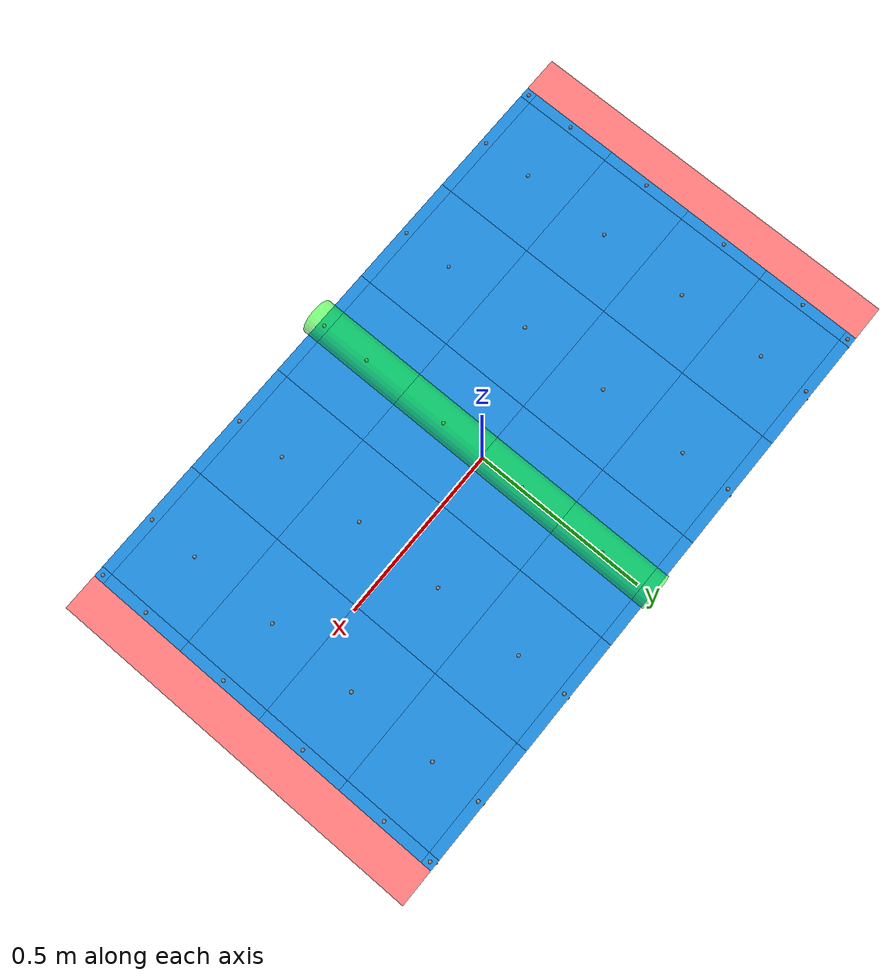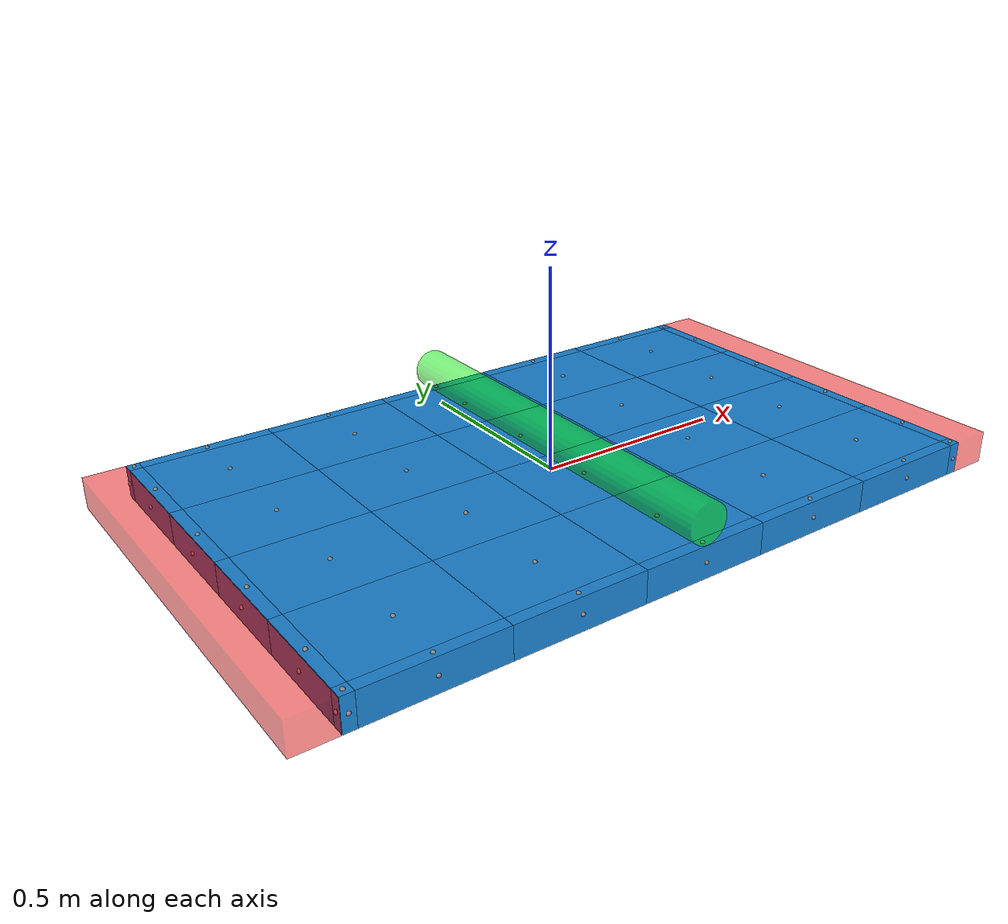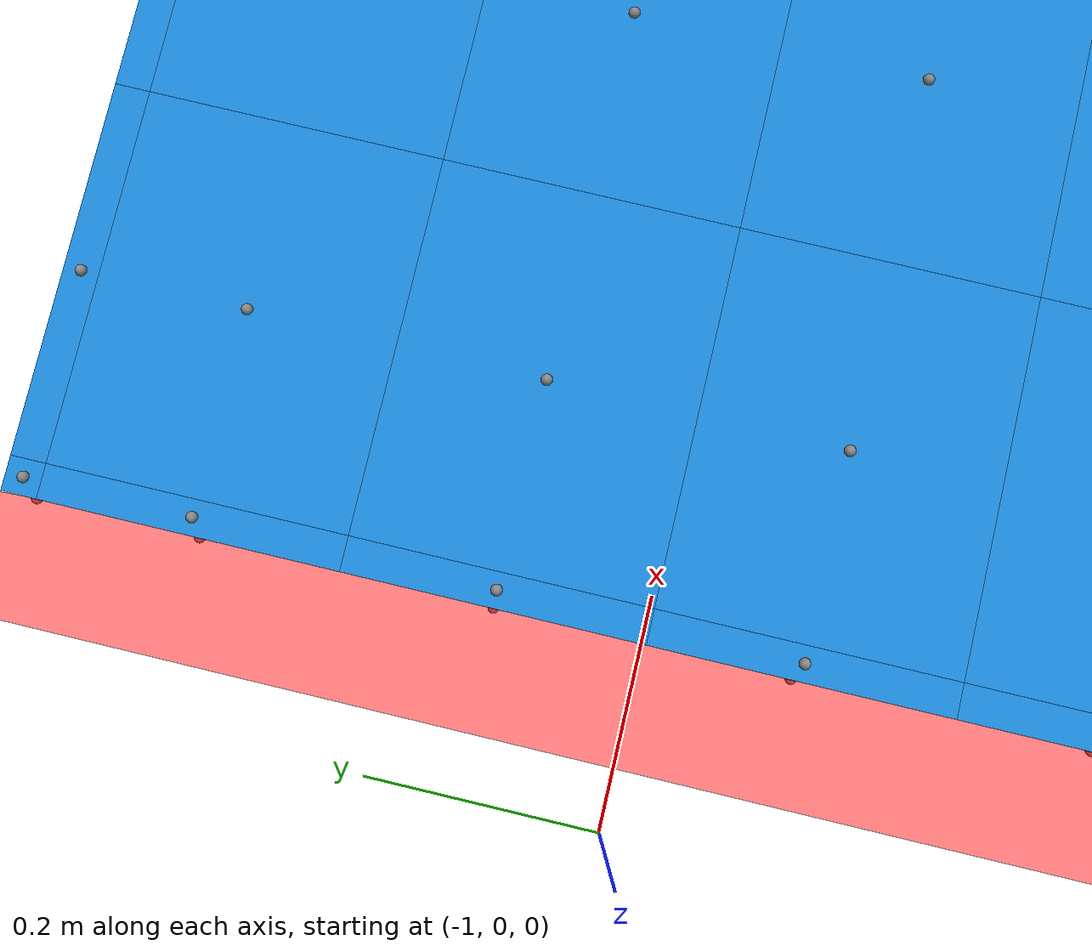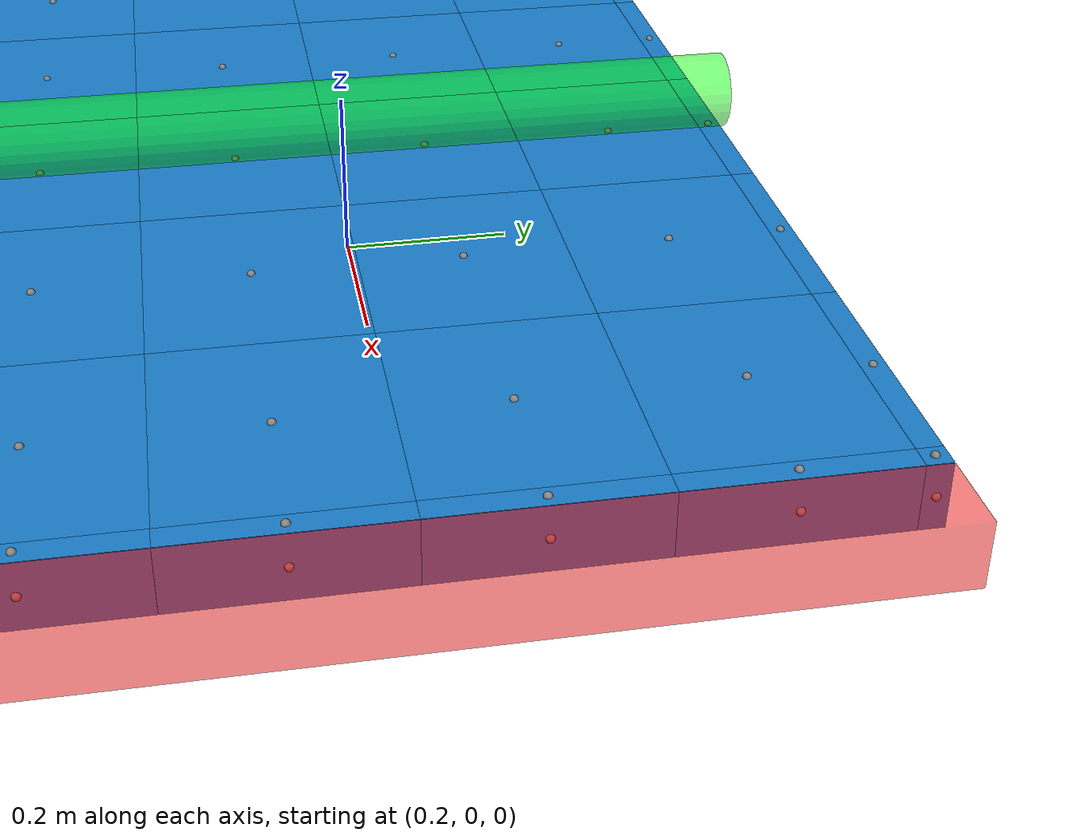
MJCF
<mujoco model="stiffness_test">
  <option integrator="implicitfast" timestep="0.001" gravity="0 0 0"><flag contact="enable"/></option>
  <default>
    <joint armature="0.01" damping="5.0"/>
    <geom friction="0.8" solref="0.02 1.0" solimp="0.9 0.95 0.001"/>
  </default>
  <worldbody>
    <light pos="0 0 5" dir="0 0 -1"/>
    <body name="BChassis">
      <body name="b_bchassis_0_0_0" pos="-0.82500 -0.52500 0.00000">
        <joint type="slide" axis="1 0 0"/>
        <joint type="slide" axis="0 1 0"/>
        <joint type="slide" axis="0 0 1"/>
        <joint type="ball"/>
        <geom type="box" size="0.01500 0.01500 0.04000" mass="0.002480" rgba="0.1 0.5 0.8 1.0" contype="4" conaffinity="2" friction="0.8" solref="0.002 1.0" solimp="0.9 0.95 0.001 0.5 2.0"/>
        <site name="s_BChassis_0_0_0_PX" pos="0.01500 0 0"/>
        <site name="s_BChassis_0_0_0_NX" pos="-0.01500 0 0"/>
        <site name="s_BChassis_0_0_0_PY" pos="0 0.01500 0"/>
        <site name="s_BChassis_0_0_0_NY" pos="0 -0.01500 0"/>
        <site name="s_BChassis_0_0_0_PZ" pos="0 0 0.04000"/>
        <site name="s_BChassis_0_0_0_NZ" pos="0 0 -0.04000"/>
      </body>
      <body name="b_bchassis_0_1_0" pos="-0.82500 -0.38250 0.00000">
        <joint type="slide" axis="1 0 0"/>
        <joint type="slide" axis="0 1 0"/>
        <joint type="slide" axis="0 0 1"/>
        <joint type="ball"/>
        <geom type="box" size="0.01500 0.12750 0.04000" mass="0.021081" rgba="0.1 0.5 0.8 1.0" contype="4" conaffinity="2" friction="0.8" solref="0.002 1.0" solimp="0.9 0.95 0.001 0.5 2.0"/>
        <site name="s_BChassis_0_1_0_PX" pos="0.01500 0 0"/>
        <site name="s_BChassis_0_1_0_NX" pos="-0.01500 0 0"/>
        <site name="s_BChassis_0_1_0_PY" pos="0 0.12750 0"/>
        <site name="s_BChassis_0_1_0_NY" pos="0 -0.12750 0"/>
        <site name="s_BChassis_0_1_0_PZ" pos="0 0 0.04000"/>
        <site name="s_BChassis_0_1_0_NZ" pos="0 0 -0.04000"/>
      </body>
      <body name="b_bchassis_0_2_0" pos="-0.82500 -0.12750 0.00000">
        <joint type="slide" axis="1 0 0"/>
        <joint type="slide" axis="0 1 0"/>
        <joint type="slide" axis="0 0 1"/>
        <joint type="ball"/>
        <geom type="box" size="0.01500 0.12750 0.04000" mass="0.021081" rgba="0.1 0.5 0.8 1.0" contype="4" conaffinity="2" friction="0.8" solref="0.002 1.0" solimp="0.9 0.95 0.001 0.5 2.0"/>
        <site name="s_BChassis_0_2_0_PX" pos="0.01500 0 0"/>
        <site name="s_BChassis_0_2_0_NX" pos="-0.01500 0 0"/>
        <site name="s_BChassis_0_2_0_PY" pos="0 0.12750 0"/>
        <site name="s_BChassis_0_2_0_NY" pos="0 -0.12750 0"/>
        <site name="s_BChassis_0_2_0_PZ" pos="0 0 0.04000"/>
        <site name="s_BChassis_0_2_0_NZ" pos="0 0 -0.04000"/>
      </body>
      <body name="b_bchassis_0_3_0" pos="-0.82500 0.12750 0.00000">
        <joint type="slide" axis="1 0 0"/>
        <joint type="slide" axis="0 1 0"/>
        <joint type="slide" axis="0 0 1"/>
        <joint type="ball"/>
        <geom type="box" size="0.01500 0.12750 0.04000" mass="0.021081" rgba="0.1 0.5 0.8 1.0" contype="4" conaffinity="2" friction="0.8" solref="0.002 1.0" solimp="0.9 0.95 0.001 0.5 2.0"/>
        <site name="s_BChassis_0_3_0_PX" pos="0.01500 0 0"/>
        <site name="s_BChassis_0_3_0_NX" pos="-0.01500 0 0"/>
        <site name="s_BChassis_0_3_0_PY" pos="0 0.12750 0"/>
        <site name="s_BChassis_0_3_0_NY" pos="0 -0.12750 0"/>
        <site name="s_BChassis_0_3_0_PZ" pos="0 0 0.04000"/>
        <site name="s_BChassis_0_3_0_NZ" pos="0 0 -0.04000"/>
      </body>
      <body name="b_bchassis_0_4_0" pos="-0.82500 0.38250 0.00000">
        <joint type="slide" axis="1 0 0"/>
        <joint type="slide" axis="0 1 0"/>
        <joint type="slide" axis="0 0 1"/>
        <joint type="ball"/>
        <geom type="box" size="0.01500 0.12750 0.04000" mass="0.021081" rgba="0.1 0.5 0.8 1.0" contype="4" conaffinity="2" friction="0.8" solref="0.002 1.0" solimp="0.9 0.95 0.001 0.5 2.0"/>
        <site name="s_BChassis_0_4_0_PX" pos="0.01500 0 0"/>
        <site name="s_BChassis_0_4_0_NX" pos="-0.01500 0 0"/>
        <site name="s_BChassis_0_4_0_PY" pos="0 0.12750 0"/>
        <site name="s_BChassis_0_4_0_NY" pos="0 -0.12750 0"/>
        <site name="s_BChassis_0_4_0_PZ" pos="0 0 0.04000"/>
        <site name="s_BChassis_0_4_0_NZ" pos="0 0 -0.04000"/>
      </body>
      <body name="b_bchassis_0_5_0" pos="-0.82500 0.52500 0.00000">
        <joint type="slide" axis="1 0 0"/>
        <joint type="slide" axis="0 1 0"/>
        <joint type="slide" axis="0 0 1"/>
        <joint type="ball"/>
        <geom type="box" size="0.01500 0.01500 0.04000" mass="0.002480" rgba="0.1 0.5 0.8 1.0" contype="4" conaffinity="2" friction="0.8" solref="0.002 1.0" solimp="0.9 0.95 0.001 0.5 2.0"/>
        <site name="s_BChassis_0_5_0_PX" pos="0.01500 0 0"/>
        <site name="s_BChassis_0_5_0_NX" pos="-0.01500 0 0"/>
        <site name="s_BChassis_0_5_0_PY" pos="0 0.01500 0"/>
        <site name="s_BChassis_0_5_0_NY" pos="0 -0.01500 0"/>
        <site name="s_BChassis_0_5_0_PZ" pos="0 0 0.04000"/>
        <site name="s_BChassis_0_5_0_NZ" pos="0 0 -0.04000"/>
      </body>
      <body name="b_bchassis_1_0_0" pos="-0.64800 -0.52500 0.00000">
        <joint type="slide" axis="1 0 0"/>
        <joint type="slide" axis="0 1 0"/>
        <joint type="slide" axis="0 0 1"/>
        <joint type="ball"/>
        <geom type="box" size="0.16200 0.01500 0.04000" mass="0.026786" rgba="0.1 0.5 0.8 1.0" contype="4" conaffinity="2" friction="0.8" solref="0.002 1.0" solimp="0.9 0.95 0.001 0.5 2.0"/>
        <site name="s_BChassis_1_0_0_PX" pos="0.16200 0 0"/>
        <site name="s_BChassis_1_0_0_NX" pos="-0.16200 0 0"/>
        <site name="s_BChassis_1_0_0_PY" pos="0 0.01500 0"/>
        <site name="s_BChassis_1_0_0_NY" pos="0 -0.01500 0"/>
        <site name="s_BChassis_1_0_0_PZ" pos="0 0 0.04000"/>
        <site name="s_BChassis_1_0_0_NZ" pos="0 0 -0.04000"/>
      </body>
      <body name="b_bchassis_1_1_0" pos="-0.64800 -0.38250 0.00000">
        <joint type="slide" axis="1 0 0"/>
        <joint type="slide" axis="0 1 0"/>
        <joint type="slide" axis="0 0 1"/>
        <joint type="ball"/>
        <geom type="box" size="0.16200 0.12750 0.04000" mass="0.227679" rgba="0.1 0.5 0.8 1.0" contype="4" conaffinity="2" friction="0.8" solref="0.002 1.0" solimp="0.9 0.95 0.001 0.5 2.0"/>
        <site name="s_BChassis_1_1_0_PX" pos="0.16200 0 0"/>
        <site name="s_BChassis_1_1_0_NX" pos="-0.16200 0 0"/>
        <site name="s_BChassis_1_1_0_PY" pos="0 0.12750 0"/>
        <site name="s_BChassis_1_1_0_NY" pos="0 -0.12750 0"/>
        <site name="s_BChassis_1_1_0_PZ" pos="0 0 0.04000"/>
        <site name="s_BChassis_1_1_0_NZ" pos="0 0 -0.04000"/>
      </body>
      <body name="b_bchassis_1_2_0" pos="-0.64800 -0.12750 0.00000">
        <joint type="slide" axis="1 0 0"/>
        <joint type="slide" axis="0 1 0"/>
        <joint type="slide" axis="0 0 1"/>
        <joint type="ball"/>
        <geom type="box" size="0.16200 0.12750 0.04000" mass="0.227679" rgba="0.1 0.5 0.8 1.0" contype="4" conaffinity="2" friction="0.8" solref="0.002 1.0" solimp="0.9 0.95 0.001 0.5 2.0"/>
        <site name="s_BChassis_1_2_0_PX" pos="0.16200 0 0"/>
        <site name="s_BChassis_1_2_0_NX" pos="-0.16200 0 0"/>
        <site name="s_BChassis_1_2_0_PY" pos="0 0.12750 0"/>
        <site name="s_BChassis_1_2_0_NY" pos="0 -0.12750 0"/>
        <site name="s_BChassis_1_2_0_PZ" pos="0 0 0.04000"/>
        <site name="s_BChassis_1_2_0_NZ" pos="0 0 -0.04000"/>
      </body>
      <body name="b_bchassis_1_3_0" pos="-0.64800 0.12750 0.00000">
        <joint type="slide" axis="1 0 0"/>
        <joint type="slide" axis="0 1 0"/>
        <joint type="slide" axis="0 0 1"/>
        <joint type="ball"/>
        <geom type="box" size="0.16200 0.12750 0.04000" mass="0.227679" rgba="0.1 0.5 0.8 1.0" contype="4" conaffinity="2" friction="0.8" solref="0.002 1.0" solimp="0.9 0.95 0.001 0.5 2.0"/>
        <site name="s_BChassis_1_3_0_PX" pos="0.16200 0 0"/>
        <site name="s_BChassis_1_3_0_NX" pos="-0.16200 0 0"/>
        <site name="s_BChassis_1_3_0_PY" pos="0 0.12750 0"/>
        <site name="s_BChassis_1_3_0_NY" pos="0 -0.12750 0"/>
        <site name="s_BChassis_1_3_0_PZ" pos="0 0 0.04000"/>
        <site name="s_BChassis_1_3_0_NZ" pos="0 0 -0.04000"/>
      </body>
      <body name="b_bchassis_1_4_0" pos="-0.64800 0.38250 0.00000">
        <joint type="slide" axis="1 0 0"/>
        <joint type="slide" axis="0 1 0"/>
        <joint type="slide" axis="0 0 1"/>
        <joint type="ball"/>
        <geom type="box" size="0.16200 0.12750 0.04000" mass="0.227679" rgba="0.1 0.5 0.8 1.0" contype="4" conaffinity="2" friction="0.8" solref="0.002 1.0" solimp="0.9 0.95 0.001 0.5 2.0"/>
        <site name="s_BChassis_1_4_0_PX" pos="0.16200 0 0"/>
        <site name="s_BChassis_1_4_0_NX" pos="-0.16200 0 0"/>
        <site name="s_BChassis_1_4_0_PY" pos="0 0.12750 0"/>
        <site name="s_BChassis_1_4_0_NY" pos="0 -0.12750 0"/>
        <site name="s_BChassis_1_4_0_PZ" pos="0 0 0.04000"/>
        <site name="s_BChassis_1_4_0_NZ" pos="0 0 -0.04000"/>
      </body>
      <body name="b_bchassis_1_5_0" pos="-0.64800 0.52500 0.00000">
        <joint type="slide" axis="1 0 0"/>
        <joint type="slide" axis="0 1 0"/>
        <joint type="slide" axis="0 0 1"/>
        <joint type="ball"/>
        <geom type="box" size="0.16200 0.01500 0.04000" mass="0.026786" rgba="0.1 0.5 0.8 1.0" contype="4" conaffinity="2" friction="0.8" solref="0.002 1.0" solimp="0.9 0.95 0.001 0.5 2.0"/>
        <site name="s_BChassis_1_5_0_PX" pos="0.16200 0 0"/>
        <site name="s_BChassis_1_5_0_NX" pos="-0.16200 0 0"/>
        <site name="s_BChassis_1_5_0_PY" pos="0 0.01500 0"/>
        <site name="s_BChassis_1_5_0_NY" pos="0 -0.01500 0"/>
        <site name="s_BChassis_1_5_0_PZ" pos="0 0 0.04000"/>
        <site name="s_BChassis_1_5_0_NZ" pos="0 0 -0.04000"/>
      </body>
      <body name="b_bchassis_2_0_0" pos="-0.32400 -0.52500 0.00000">
        <joint type="slide" axis="1 0 0"/>
        <joint type="slide" axis="0 1 0"/>
        <joint type="slide" axis="0 0 1"/>
        <joint type="ball"/>
        <geom type="box" size="0.16200 0.01500 0.04000" mass="0.026786" rgba="0.1 0.5 0.8 1.0" contype="4" conaffinity="2" friction="0.8" solref="0.002 1.0" solimp="0.9 0.95 0.001 0.5 2.0"/>
        <site name="s_BChassis_2_0_0_PX" pos="0.16200 0 0"/>
        <site name="s_BChassis_2_0_0_NX" pos="-0.16200 0 0"/>
        <site name="s_BChassis_2_0_0_PY" pos="0 0.01500 0"/>
        <site name="s_BChassis_2_0_0_NY" pos="0 -0.01500 0"/>
        <site name="s_BChassis_2_0_0_PZ" pos="0 0 0.04000"/>
        <site name="s_BChassis_2_0_0_NZ" pos="0 0 -0.04000"/>
      </body>
      <body name="b_bchassis_2_1_0" pos="-0.32400 -0.38250 0.00000">
        <joint type="slide" axis="1 0 0"/>
        <joint type="slide" axis="0 1 0"/>
        <joint type="slide" axis="0 0 1"/>
        <joint type="ball"/>
        <geom type="box" size="0.16200 0.12750 0.04000" mass="0.227679" rgba="0.1 0.5 0.8 1.0" contype="4" conaffinity="2" friction="0.8" solref="0.002 1.0" solimp="0.9 0.95 0.001 0.5 2.0"/>
        <site name="s_BChassis_2_1_0_PX" pos="0.16200 0 0"/>
        <site name="s_BChassis_2_1_0_NX" pos="-0.16200 0 0"/>
        <site name="s_BChassis_2_1_0_PY" pos="0 0.12750 0"/>
        <site name="s_BChassis_2_1_0_NY" pos="0 -0.12750 0"/>
        <site name="s_BChassis_2_1_0_PZ" pos="0 0 0.04000"/>
        <site name="s_BChassis_2_1_0_NZ" pos="0 0 -0.04000"/>
      </body>
      <body name="b_bchassis_2_2_0" pos="-0.32400 -0.12750 0.00000">
        <joint type="slide" axis="1 0 0"/>
        <joint type="slide" axis="0 1 0"/>
        <joint type="slide" axis="0 0 1"/>
        <joint type="ball"/>
        <geom type="box" size="0.16200 0.12750 0.04000" mass="0.227679" rgba="0.1 0.5 0.8 1.0" contype="4" conaffinity="2" friction="0.8" solref="0.002 1.0" solimp="0.9 0.95 0.001 0.5 2.0"/>
        <site name="s_BChassis_2_2_0_PX" pos="0.16200 0 0"/>
        <site name="s_BChassis_2_2_0_NX" pos="-0.16200 0 0"/>
        <site name="s_BChassis_2_2_0_PY" pos="0 0.12750 0"/>
        <site name="s_BChassis_2_2_0_NY" pos="0 -0.12750 0"/>
        <site name="s_BChassis_2_2_0_PZ" pos="0 0 0.04000"/>
        <site name="s_BChassis_2_2_0_NZ" pos="0 0 -0.04000"/>
      </body>
      <body name="b_bchassis_2_3_0" pos="-0.32400 0.12750 0.00000">
        <joint type="slide" axis="1 0 0"/>
        <joint type="slide" axis="0 1 0"/>
        <joint type="slide" axis="0 0 1"/>
        <joint type="ball"/>
        <geom type="box" size="0.16200 0.12750 0.04000" mass="0.227679" rgba="0.1 0.5 0.8 1.0" contype="4" conaffinity="2" friction="0.8" solref="0.002 1.0" solimp="0.9 0.95 0.001 0.5 2.0"/>
        <site name="s_BChassis_2_3_0_PX" pos="0.16200 0 0"/>
        <site name="s_BChassis_2_3_0_NX" pos="-0.16200 0 0"/>
        <site name="s_BChassis_2_3_0_PY" pos="0 0.12750 0"/>
        <site name="s_BChassis_2_3_0_NY" pos="0 -0.12750 0"/>
        <site name="s_BChassis_2_3_0_PZ" pos="0 0 0.04000"/>
        <site name="s_BChassis_2_3_0_NZ" pos="0 0 -0.04000"/>
      </body>
      <body name="b_bchassis_2_4_0" pos="-0.32400 0.38250 0.00000">
        <joint type="slide" axis="1 0 0"/>
        <joint type="slide" axis="0 1 0"/>
        <joint type="slide" axis="0 0 1"/>
        <joint type="ball"/>
        <geom type="box" size="0.16200 0.12750 0.04000" mass="0.227679" rgba="0.1 0.5 0.8 1.0" contype="4" conaffinity="2" friction="0.8" solref="0.002 1.0" solimp="0.9 0.95 0.001 0.5 2.0"/>
        <site name="s_BChassis_2_4_0_PX" pos="0.16200 0 0"/>
        <site name="s_BChassis_2_4_0_NX" pos="-0.16200 0 0"/>
        <site name="s_BChassis_2_4_0_PY" pos="0 0.12750 0"/>
        <site name="s_BChassis_2_4_0_NY" pos="0 -0.12750 0"/>
        <site name="s_BChassis_2_4_0_PZ" pos="0 0 0.04000"/>
        <site name="s_BChassis_2_4_0_NZ" pos="0 0 -0.04000"/>
      </body>
      <body name="b_bchassis_2_5_0" pos="-0.32400 0.52500 0.00000">
        <joint type="slide" axis="1 0 0"/>
        <joint type="slide" axis="0 1 0"/>
        <joint type="slide" axis="0 0 1"/>
        <joint type="ball"/>
        <geom type="box" size="0.16200 0.01500 0.04000" mass="0.026786" rgba="0.1 0.5 0.8 1.0" contype="4" conaffinity="2" friction="0.8" solref="0.002 1.0" solimp="0.9 0.95 0.001 0.5 2.0"/>
        <site name="s_BChassis_2_5_0_PX" pos="0.16200 0 0"/>
        <site name="s_BChassis_2_5_0_NX" pos="-0.16200 0 0"/>
        <site name="s_BChassis_2_5_0_PY" pos="0 0.01500 0"/>
        <site name="s_BChassis_2_5_0_NY" pos="0 -0.01500 0"/>
        <site name="s_BChassis_2_5_0_PZ" pos="0 0 0.04000"/>
        <site name="s_BChassis_2_5_0_NZ" pos="0 0 -0.04000"/>
      </body>
      <body name="b_bchassis_3_0_0" pos="0.00000 -0.52500 0.00000">
        <joint type="slide" axis="1 0 0"/>
        <joint type="slide" axis="0 1 0"/>
        <joint type="slide" axis="0 0 1"/>
        <joint type="ball"/>
        <geom type="box" size="0.16200 0.01500 0.04000" mass="0.026786" rgba="0.1 0.5 0.8 1.0" contype="4" conaffinity="2" friction="0.8" solref="0.002 1.0" solimp="0.9 0.95 0.001 0.5 2.0"/>
        <site name="s_BChassis_3_0_0_PX" pos="0.16200 0 0"/>
        <site name="s_BChassis_3_0_0_NX" pos="-0.16200 0 0"/>
        <site name="s_BChassis_3_0_0_PY" pos="0 0.01500 0"/>
        <site name="s_BChassis_3_0_0_NY" pos="0 -0.01500 0"/>
        <site name="s_BChassis_3_0_0_PZ" pos="0 0 0.04000"/>
        <site name="s_BChassis_3_0_0_NZ" pos="0 0 -0.04000"/>
      </body>
      <body name="b_bchassis_3_1_0" pos="0.00000 -0.38250 0.00000">
        <joint type="slide" axis="1 0 0"/>
        <joint type="slide" axis="0 1 0"/>
        <joint type="slide" axis="0 0 1"/>
        <joint type="ball"/>
        <geom type="box" size="0.16200 0.12750 0.04000" mass="0.227679" rgba="0.1 0.5 0.8 1.0" contype="4" conaffinity="2" friction="0.8" solref="0.002 1.0" solimp="0.9 0.95 0.001 0.5 2.0"/>
        <site name="s_BChassis_3_1_0_PX" pos="0.16200 0 0"/>
        <site name="s_BChassis_3_1_0_NX" pos="-0.16200 0 0"/>
        <site name="s_BChassis_3_1_0_PY" pos="0 0.12750 0"/>
        <site name="s_BChassis_3_1_0_NY" pos="0 -0.12750 0"/>
        <site name="s_BChassis_3_1_0_PZ" pos="0 0 0.04000"/>
        <site name="s_BChassis_3_1_0_NZ" pos="0 0 -0.04000"/>
      </body>
      <body name="b_bchassis_3_2_0" pos="0.00000 -0.12750 0.00000">
        <joint type="slide" axis="1 0 0"/>
        <joint type="slide" axis="0 1 0"/>
        <joint type="slide" axis="0 0 1"/>
        <joint type="ball"/>
        <geom type="box" size="0.16200 0.12750 0.04000" mass="0.227679" rgba="0.1 0.5 0.8 1.0" contype="4" conaffinity="2" friction="0.8" solref="0.002 1.0" solimp="0.9 0.95 0.001 0.5 2.0"/>
        <site name="s_BChassis_3_2_0_PX" pos="0.16200 0 0"/>
        <site name="s_BChassis_3_2_0_NX" pos="-0.16200 0 0"/>
        <site name="s_BChassis_3_2_0_PY" pos="0 0.12750 0"/>
        <site name="s_BChassis_3_2_0_NY" pos="0 -0.12750 0"/>
        <site name="s_BChassis_3_2_0_PZ" pos="0 0 0.04000"/>
        <site name="s_BChassis_3_2_0_NZ" pos="0 0 -0.04000"/>
      </body>
      <body name="b_bchassis_3_3_0" pos="0.00000 0.12750 0.00000">
        <joint type="slide" axis="1 0 0"/>
        <joint type="slide" axis="0 1 0"/>
        <joint type="slide" axis="0 0 1"/>
        <joint type="ball"/>
        <geom type="box" size="0.16200 0.12750 0.04000" mass="0.227679" rgba="0.1 0.5 0.8 1.0" contype="4" conaffinity="2" friction="0.8" solref="0.002 1.0" solimp="0.9 0.95 0.001 0.5 2.0"/>
        <site name="s_BChassis_3_3_0_PX" pos="0.16200 0 0"/>
        <site name="s_BChassis_3_3_0_NX" pos="-0.16200 0 0"/>
        <site name="s_BChassis_3_3_0_PY" pos="0 0.12750 0"/>
        <site name="s_BChassis_3_3_0_NY" pos="0 -0.12750 0"/>
        <site name="s_BChassis_3_3_0_PZ" pos="0 0 0.04000"/>
        <site name="s_BChassis_3_3_0_NZ" pos="0 0 -0.04000"/>
      </body>
      <body name="b_bchassis_3_4_0" pos="0.00000 0.38250 0.00000">
        <joint type="slide" axis="1 0 0"/>
        <joint type="slide" axis="0 1 0"/>
        <joint type="slide" axis="0 0 1"/>
        <joint type="ball"/>
        <geom type="box" size="0.16200 0.12750 0.04000" mass="0.227679" rgba="0.1 0.5 0.8 1.0" contype="4" conaffinity="2" friction="0.8" solref="0.002 1.0" solimp="0.9 0.95 0.001 0.5 2.0"/>
        <site name="s_BChassis_3_4_0_PX" pos="0.16200 0 0"/>
        <site name="s_BChassis_3_4_0_NX" pos="-0.16200 0 0"/>
        <site name="s_BChassis_3_4_0_PY" pos="0 0.12750 0"/>
        <site name="s_BChassis_3_4_0_NY" pos="0 -0.12750 0"/>
        <site name="s_BChassis_3_4_0_PZ" pos="0 0 0.04000"/>
        <site name="s_BChassis_3_4_0_NZ" pos="0 0 -0.04000"/>
      </body>
      <body name="b_bchassis_3_5_0" pos="0.00000 0.52500 0.00000">
        <joint type="slide" axis="1 0 0"/>
        <joint type="slide" axis="0 1 0"/>
        <joint type="slide" axis="0 0 1"/>
        <joint type="ball"/>
        <geom type="box" size="0.16200 0.01500 0.04000" mass="0.026786" rgba="0.1 0.5 0.8 1.0" contype="4" conaffinity="2" friction="0.8" solref="0.002 1.0" solimp="0.9 0.95 0.001 0.5 2.0"/>
        <site name="s_BChassis_3_5_0_PX" pos="0.16200 0 0"/>
        <site name="s_BChassis_3_5_0_NX" pos="-0.16200 0 0"/>
        <site name="s_BChassis_3_5_0_PY" pos="0 0.01500 0"/>
        <site name="s_BChassis_3_5_0_NY" pos="0 -0.01500 0"/>
        <site name="s_BChassis_3_5_0_PZ" pos="0 0 0.04000"/>
        <site name="s_BChassis_3_5_0_NZ" pos="0 0 -0.04000"/>
      </body>
      <body name="b_bchassis_4_0_0" pos="0.32400 -0.52500 0.00000">
        <joint type="slide" axis="1 0 0"/>
        <joint type="slide" axis="0 1 0"/>
        <joint type="slide" axis="0 0 1"/>
        <joint type="ball"/>
        <geom type="box" size="0.16200 0.01500 0.04000" mass="0.026786" rgba="0.1 0.5 0.8 1.0" contype="4" conaffinity="2" friction="0.8" solref="0.002 1.0" solimp="0.9 0.95 0.001 0.5 2.0"/>
        <site name="s_BChassis_4_0_0_PX" pos="0.16200 0 0"/>
        <site name="s_BChassis_4_0_0_NX" pos="-0.16200 0 0"/>
        <site name="s_BChassis_4_0_0_PY" pos="0 0.01500 0"/>
        <site name="s_BChassis_4_0_0_NY" pos="0 -0.01500 0"/>
        <site name="s_BChassis_4_0_0_PZ" pos="0 0 0.04000"/>
        <site name="s_BChassis_4_0_0_NZ" pos="0 0 -0.04000"/>
      </body>
      <body name="b_bchassis_4_1_0" pos="0.32400 -0.38250 0.00000">
        <joint type="slide" axis="1 0 0"/>
        <joint type="slide" axis="0 1 0"/>
        <joint type="slide" axis="0 0 1"/>
        <joint type="ball"/>
        <geom type="box" size="0.16200 0.12750 0.04000" mass="0.227679" rgba="0.1 0.5 0.8 1.0" contype="4" conaffinity="2" friction="0.8" solref="0.002 1.0" solimp="0.9 0.95 0.001 0.5 2.0"/>
        <site name="s_BChassis_4_1_0_PX" pos="0.16200 0 0"/>
        <site name="s_BChassis_4_1_0_NX" pos="-0.16200 0 0"/>
        <site name="s_BChassis_4_1_0_PY" pos="0 0.12750 0"/>
        <site name="s_BChassis_4_1_0_NY" pos="0 -0.12750 0"/>
        <site name="s_BChassis_4_1_0_PZ" pos="0 0 0.04000"/>
        <site name="s_BChassis_4_1_0_NZ" pos="0 0 -0.04000"/>
      </body>
      <body name="b_bchassis_4_2_0" pos="0.32400 -0.12750 0.00000">
        <joint type="slide" axis="1 0 0"/>
        <joint type="slide" axis="0 1 0"/>
        <joint type="slide" axis="0 0 1"/>
        <joint type="ball"/>
        <geom type="box" size="0.16200 0.12750 0.04000" mass="0.227679" rgba="0.1 0.5 0.8 1.0" contype="4" conaffinity="2" friction="0.8" solref="0.002 1.0" solimp="0.9 0.95 0.001 0.5 2.0"/>
        <site name="s_BChassis_4_2_0_PX" pos="0.16200 0 0"/>
        <site name="s_BChassis_4_2_0_NX" pos="-0.16200 0 0"/>
        <site name="s_BChassis_4_2_0_PY" pos="0 0.12750 0"/>
        <site name="s_BChassis_4_2_0_NY" pos="0 -0.12750 0"/>
        <site name="s_BChassis_4_2_0_PZ" pos="0 0 0.04000"/>
        <site name="s_BChassis_4_2_0_NZ" pos="0 0 -0.04000"/>
      </body>
      <body name="b_bchassis_4_3_0" pos="0.32400 0.12750 0.00000">
        <joint type="slide" axis="1 0 0"/>
        <joint type="slide" axis="0 1 0"/>
        <joint type="slide" axis="0 0 1"/>
        <joint type="ball"/>
        <geom type="box" size="0.16200 0.12750 0.04000" mass="0.227679" rgba="0.1 0.5 0.8 1.0" contype="4" conaffinity="2" friction="0.8" solref="0.002 1.0" solimp="0.9 0.95 0.001 0.5 2.0"/>
        <site name="s_BChassis_4_3_0_PX" pos="0.16200 0 0"/>
        <site name="s_BChassis_4_3_0_NX" pos="-0.16200 0 0"/>
        <site name="s_BChassis_4_3_0_PY" pos="0 0.12750 0"/>
        <site name="s_BChassis_4_3_0_NY" pos="0 -0.12750 0"/>
        <site name="s_BChassis_4_3_0_PZ" pos="0 0 0.04000"/>
        <site name="s_BChassis_4_3_0_NZ" pos="0 0 -0.04000"/>
      </body>
      <body name="b_bchassis_4_4_0" pos="0.32400 0.38250 0.00000">
        <joint type="slide" axis="1 0 0"/>
        <joint type="slide" axis="0 1 0"/>
        <joint type="slide" axis="0 0 1"/>
        <joint type="ball"/>
        <geom type="box" size="0.16200 0.12750 0.04000" mass="0.227679" rgba="0.1 0.5 0.8 1.0" contype="4" conaffinity="2" friction="0.8" solref="0.002 1.0" solimp="0.9 0.95 0.001 0.5 2.0"/>
        <site name="s_BChassis_4_4_0_PX" pos="0.16200 0 0"/>
        <site name="s_BChassis_4_4_0_NX" pos="-0.16200 0 0"/>
        <site name="s_BChassis_4_4_0_PY" pos="0 0.12750 0"/>
        <site name="s_BChassis_4_4_0_NY" pos="0 -0.12750 0"/>
        <site name="s_BChassis_4_4_0_PZ" pos="0 0 0.04000"/>
        <site name="s_BChassis_4_4_0_NZ" pos="0 0 -0.04000"/>
      </body>
      <body name="b_bchassis_4_5_0" pos="0.32400 0.52500 0.00000">
        <joint type="slide" axis="1 0 0"/>
        <joint type="slide" axis="0 1 0"/>
        <joint type="slide" axis="0 0 1"/>
        <joint type="ball"/>
        <geom type="box" size="0.16200 0.01500 0.04000" mass="0.026786" rgba="0.1 0.5 0.8 1.0" contype="4" conaffinity="2" friction="0.8" solref="0.002 1.0" solimp="0.9 0.95 0.001 0.5 2.0"/>
        <site name="s_BChassis_4_5_0_PX" pos="0.16200 0 0"/>
        <site name="s_BChassis_4_5_0_NX" pos="-0.16200 0 0"/>
        <site name="s_BChassis_4_5_0_PY" pos="0 0.01500 0"/>
        <site name="s_BChassis_4_5_0_NY" pos="0 -0.01500 0"/>
        <site name="s_BChassis_4_5_0_PZ" pos="0 0 0.04000"/>
        <site name="s_BChassis_4_5_0_NZ" pos="0 0 -0.04000"/>
      </body>
      <body name="b_bchassis_5_0_0" pos="0.64800 -0.52500 0.00000">
        <joint type="slide" axis="1 0 0"/>
        <joint type="slide" axis="0 1 0"/>
        <joint type="slide" axis="0 0 1"/>
        <joint type="ball"/>
        <geom type="box" size="0.16200 0.01500 0.04000" mass="0.026786" rgba="0.1 0.5 0.8 1.0" contype="4" conaffinity="2" friction="0.8" solref="0.002 1.0" solimp="0.9 0.95 0.001 0.5 2.0"/>
        <site name="s_BChassis_5_0_0_PX" pos="0.16200 0 0"/>
        <site name="s_BChassis_5_0_0_NX" pos="-0.16200 0 0"/>
        <site name="s_BChassis_5_0_0_PY" pos="0 0.01500 0"/>
        <site name="s_BChassis_5_0_0_NY" pos="0 -0.01500 0"/>
        <site name="s_BChassis_5_0_0_PZ" pos="0 0 0.04000"/>
        <site name="s_BChassis_5_0_0_NZ" pos="0 0 -0.04000"/>
      </body>
      <body name="b_bchassis_5_1_0" pos="0.64800 -0.38250 0.00000">
        <joint type="slide" axis="1 0 0"/>
        <joint type="slide" axis="0 1 0"/>
        <joint type="slide" axis="0 0 1"/>
        <joint type="ball"/>
        <geom type="box" size="0.16200 0.12750 0.04000" mass="0.227679" rgba="0.1 0.5 0.8 1.0" contype="4" conaffinity="2" friction="0.8" solref="0.002 1.0" solimp="0.9 0.95 0.001 0.5 2.0"/>
        <site name="s_BChassis_5_1_0_PX" pos="0.16200 0 0"/>
        <site name="s_BChassis_5_1_0_NX" pos="-0.16200 0 0"/>
        <site name="s_BChassis_5_1_0_PY" pos="0 0.12750 0"/>
        <site name="s_BChassis_5_1_0_NY" pos="0 -0.12750 0"/>
        <site name="s_BChassis_5_1_0_PZ" pos="0 0 0.04000"/>
        <site name="s_BChassis_5_1_0_NZ" pos="0 0 -0.04000"/>
      </body>
      <body name="b_bchassis_5_2_0" pos="0.64800 -0.12750 0.00000">
        <joint type="slide" axis="1 0 0"/>
        <joint type="slide" axis="0 1 0"/>
        <joint type="slide" axis="0 0 1"/>
        <joint type="ball"/>
        <geom type="box" size="0.16200 0.12750 0.04000" mass="0.227679" rgba="0.1 0.5 0.8 1.0" contype="4" conaffinity="2" friction="0.8" solref="0.002 1.0" solimp="0.9 0.95 0.001 0.5 2.0"/>
        <site name="s_BChassis_5_2_0_PX" pos="0.16200 0 0"/>
        <site name="s_BChassis_5_2_0_NX" pos="-0.16200 0 0"/>
        <site name="s_BChassis_5_2_0_PY" pos="0 0.12750 0"/>
        <site name="s_BChassis_5_2_0_NY" pos="0 -0.12750 0"/>
        <site name="s_BChassis_5_2_0_PZ" pos="0 0 0.04000"/>
        <site name="s_BChassis_5_2_0_NZ" pos="0 0 -0.04000"/>
      </body>
      <body name="b_bchassis_5_3_0" pos="0.64800 0.12750 0.00000">
        <joint type="slide" axis="1 0 0"/>
        <joint type="slide" axis="0 1 0"/>
        <joint type="slide" axis="0 0 1"/>
        <joint type="ball"/>
        <geom type="box" size="0.16200 0.12750 0.04000" mass="0.227679" rgba="0.1 0.5 0.8 1.0" contype="4" conaffinity="2" friction="0.8" solref="0.002 1.0" solimp="0.9 0.95 0.001 0.5 2.0"/>
        <site name="s_BChassis_5_3_0_PX" pos="0.16200 0 0"/>
        <site name="s_BChassis_5_3_0_NX" pos="-0.16200 0 0"/>
        <site name="s_BChassis_5_3_0_PY" pos="0 0.12750 0"/>
        <site name="s_BChassis_5_3_0_NY" pos="0 -0.12750 0"/>
        <site name="s_BChassis_5_3_0_PZ" pos="0 0 0.04000"/>
        <site name="s_BChassis_5_3_0_NZ" pos="0 0 -0.04000"/>
      </body>
      <body name="b_bchassis_5_4_0" pos="0.64800 0.38250 0.00000">
        <joint type="slide" axis="1 0 0"/>
        <joint type="slide" axis="0 1 0"/>
        <joint type="slide" axis="0 0 1"/>
        <joint type="ball"/>
        <geom type="box" size="0.16200 0.12750 0.04000" mass="0.227679" rgba="0.1 0.5 0.8 1.0" contype="4" conaffinity="2" friction="0.8" solref="0.002 1.0" solimp="0.9 0.95 0.001 0.5 2.0"/>
        <site name="s_BChassis_5_4_0_PX" pos="0.16200 0 0"/>
        <site name="s_BChassis_5_4_0_NX" pos="-0.16200 0 0"/>
        <site name="s_BChassis_5_4_0_PY" pos="0 0.12750 0"/>
        <site name="s_BChassis_5_4_0_NY" pos="0 -0.12750 0"/>
        <site name="s_BChassis_5_4_0_PZ" pos="0 0 0.04000"/>
        <site name="s_BChassis_5_4_0_NZ" pos="0 0 -0.04000"/>
      </body>
      <body name="b_bchassis_5_5_0" pos="0.64800 0.52500 0.00000">
        <joint type="slide" axis="1 0 0"/>
        <joint type="slide" axis="0 1 0"/>
        <joint type="slide" axis="0 0 1"/>
        <joint type="ball"/>
        <geom type="box" size="0.16200 0.01500 0.04000" mass="0.026786" rgba="0.1 0.5 0.8 1.0" contype="4" conaffinity="2" friction="0.8" solref="0.002 1.0" solimp="0.9 0.95 0.001 0.5 2.0"/>
        <site name="s_BChassis_5_5_0_PX" pos="0.16200 0 0"/>
        <site name="s_BChassis_5_5_0_NX" pos="-0.16200 0 0"/>
        <site name="s_BChassis_5_5_0_PY" pos="0 0.01500 0"/>
        <site name="s_BChassis_5_5_0_NY" pos="0 -0.01500 0"/>
        <site name="s_BChassis_5_5_0_PZ" pos="0 0 0.04000"/>
        <site name="s_BChassis_5_5_0_NZ" pos="0 0 -0.04000"/>
      </body>
      <body name="b_bchassis_6_0_0" pos="0.82500 -0.52500 0.00000">
        <joint type="slide" axis="1 0 0"/>
        <joint type="slide" axis="0 1 0"/>
        <joint type="slide" axis="0 0 1"/>
        <joint type="ball"/>
        <geom type="box" size="0.01500 0.01500 0.04000" mass="0.002480" rgba="0.1 0.5 0.8 1.0" contype="4" conaffinity="2" friction="0.8" solref="0.002 1.0" solimp="0.9 0.95 0.001 0.5 2.0"/>
        <site name="s_BChassis_6_0_0_PX" pos="0.01500 0 0"/>
        <site name="s_BChassis_6_0_0_NX" pos="-0.01500 0 0"/>
        <site name="s_BChassis_6_0_0_PY" pos="0 0.01500 0"/>
        <site name="s_BChassis_6_0_0_NY" pos="0 -0.01500 0"/>
        <site name="s_BChassis_6_0_0_PZ" pos="0 0 0.04000"/>
        <site name="s_BChassis_6_0_0_NZ" pos="0 0 -0.04000"/>
      </body>
      <body name="b_bchassis_6_1_0" pos="0.82500 -0.38250 0.00000">
        <joint type="slide" axis="1 0 0"/>
        <joint type="slide" axis="0 1 0"/>
        <joint type="slide" axis="0 0 1"/>
        <joint type="ball"/>
        <geom type="box" size="0.01500 0.12750 0.04000" mass="0.021081" rgba="0.1 0.5 0.8 1.0" contype="4" conaffinity="2" friction="0.8" solref="0.002 1.0" solimp="0.9 0.95 0.001 0.5 2.0"/>
        <site name="s_BChassis_6_1_0_PX" pos="0.01500 0 0"/>
        <site name="s_BChassis_6_1_0_NX" pos="-0.01500 0 0"/>
        <site name="s_BChassis_6_1_0_PY" pos="0 0.12750 0"/>
        <site name="s_BChassis_6_1_0_NY" pos="0 -0.12750 0"/>
        <site name="s_BChassis_6_1_0_PZ" pos="0 0 0.04000"/>
        <site name="s_BChassis_6_1_0_NZ" pos="0 0 -0.04000"/>
      </body>
      <body name="b_bchassis_6_2_0" pos="0.82500 -0.12750 0.00000">
        <joint type="slide" axis="1 0 0"/>
        <joint type="slide" axis="0 1 0"/>
        <joint type="slide" axis="0 0 1"/>
        <joint type="ball"/>
        <geom type="box" size="0.01500 0.12750 0.04000" mass="0.021081" rgba="0.1 0.5 0.8 1.0" contype="4" conaffinity="2" friction="0.8" solref="0.002 1.0" solimp="0.9 0.95 0.001 0.5 2.0"/>
        <site name="s_BChassis_6_2_0_PX" pos="0.01500 0 0"/>
        <site name="s_BChassis_6_2_0_NX" pos="-0.01500 0 0"/>
        <site name="s_BChassis_6_2_0_PY" pos="0 0.12750 0"/>
        <site name="s_BChassis_6_2_0_NY" pos="0 -0.12750 0"/>
        <site name="s_BChassis_6_2_0_PZ" pos="0 0 0.04000"/>
        <site name="s_BChassis_6_2_0_NZ" pos="0 0 -0.04000"/>
      </body>
      <body name="b_bchassis_6_3_0" pos="0.82500 0.12750 0.00000">
        <joint type="slide" axis="1 0 0"/>
        <joint type="slide" axis="0 1 0"/>
        <joint type="slide" axis="0 0 1"/>
        <joint type="ball"/>
        <geom type="box" size="0.01500 0.12750 0.04000" mass="0.021081" rgba="0.1 0.5 0.8 1.0" contype="4" conaffinity="2" friction="0.8" solref="0.002 1.0" solimp="0.9 0.95 0.001 0.5 2.0"/>
        <site name="s_BChassis_6_3_0_PX" pos="0.01500 0 0"/>
        <site name="s_BChassis_6_3_0_NX" pos="-0.01500 0 0"/>
        <site name="s_BChassis_6_3_0_PY" pos="0 0.12750 0"/>
        <site name="s_BChassis_6_3_0_NY" pos="0 -0.12750 0"/>
        <site name="s_BChassis_6_3_0_PZ" pos="0 0 0.04000"/>
        <site name="s_BChassis_6_3_0_NZ" pos="0 0 -0.04000"/>
      </body>
      <body name="b_bchassis_6_4_0" pos="0.82500 0.38250 0.00000">
        <joint type="slide" axis="1 0 0"/>
        <joint type="slide" axis="0 1 0"/>
        <joint type="slide" axis="0 0 1"/>
        <joint type="ball"/>
        <geom type="box" size="0.01500 0.12750 0.04000" mass="0.021081" rgba="0.1 0.5 0.8 1.0" contype="4" conaffinity="2" friction="0.8" solref="0.002 1.0" solimp="0.9 0.95 0.001 0.5 2.0"/>
        <site name="s_BChassis_6_4_0_PX" pos="0.01500 0 0"/>
        <site name="s_BChassis_6_4_0_NX" pos="-0.01500 0 0"/>
        <site name="s_BChassis_6_4_0_PY" pos="0 0.12750 0"/>
        <site name="s_BChassis_6_4_0_NY" pos="0 -0.12750 0"/>
        <site name="s_BChassis_6_4_0_PZ" pos="0 0 0.04000"/>
        <site name="s_BChassis_6_4_0_NZ" pos="0 0 -0.04000"/>
      </body>
      <body name="b_bchassis_6_5_0" pos="0.82500 0.52500 0.00000">
        <joint type="slide" axis="1 0 0"/>
        <joint type="slide" axis="0 1 0"/>
        <joint type="slide" axis="0 0 1"/>
        <joint type="ball"/>
        <geom type="box" size="0.01500 0.01500 0.04000" mass="0.002480" rgba="0.1 0.5 0.8 1.0" contype="4" conaffinity="2" friction="0.8" solref="0.002 1.0" solimp="0.9 0.95 0.001 0.5 2.0"/>
        <site name="s_BChassis_6_5_0_PX" pos="0.01500 0 0"/>
        <site name="s_BChassis_6_5_0_NX" pos="-0.01500 0 0"/>
        <site name="s_BChassis_6_5_0_PY" pos="0 0.01500 0"/>
        <site name="s_BChassis_6_5_0_NY" pos="0 -0.01500 0"/>
        <site name="s_BChassis_6_5_0_PZ" pos="0 0 0.04000"/>
        <site name="s_BChassis_6_5_0_NZ" pos="0 0 -0.04000"/>
      </body>
    </body>
    <body name="clamp_L" pos="-0.8909999999999999 0 0"><geom type="box" size="0.05 0.5399999999999999 0.04" rgba="1 0 0 0.5"/></body>
    <body name="clamp_R" pos="0.8909999999999999 0 0"><geom type="box" size="0.05 0.5399999999999999 0.04" rgba="1 0 0 0.5"/></body>
    <body name="ram" pos="0 0 0.091">
      <joint name="ram_z" type="slide" axis="0 0 1"/>
      <geom type="cylinder" size="0.05 0.5399999999999999" euler="90 0 0" rgba="0 1 0 0.5"/>
    </body>
  </worldbody>
  <actuator>
    <position name="act_ram" joint="ram_z" kp="200000" kv="1000"/>
  </actuator>
  <equality>
        <weld site1="s_BChassis_0_0_0_PX" site2="s_BChassis_1_0_0_NX" solref="0.002 1.0" solimp="0.9 0.95 0.001 0.5 2.0"/>
        <weld site1="s_BChassis_0_0_0_PY" site2="s_BChassis_0_1_0_NY" solref="0.002 1.0" solimp="0.9 0.95 0.001 0.5 2.0"/>
        <weld site1="s_BChassis_0_1_0_PX" site2="s_BChassis_1_1_0_NX" solref="0.002 1.0" solimp="0.9 0.95 0.001 0.5 2.0"/>
        <weld site1="s_BChassis_0_1_0_PY" site2="s_BChassis_0_2_0_NY" solref="0.002 1.0" solimp="0.9 0.95 0.001 0.5 2.0"/>
        <weld site1="s_BChassis_0_2_0_PX" site2="s_BChassis_1_2_0_NX" solref="0.002 1.0" solimp="0.9 0.95 0.001 0.5 2.0"/>
        <weld site1="s_BChassis_0_2_0_PY" site2="s_BChassis_0_3_0_NY" solref="0.002 1.0" solimp="0.9 0.95 0.001 0.5 2.0"/>
        <weld site1="s_BChassis_0_3_0_PX" site2="s_BChassis_1_3_0_NX" solref="0.002 1.0" solimp="0.9 0.95 0.001 0.5 2.0"/>
        <weld site1="s_BChassis_0_3_0_PY" site2="s_BChassis_0_4_0_NY" solref="0.002 1.0" solimp="0.9 0.95 0.001 0.5 2.0"/>
        <weld site1="s_BChassis_0_4_0_PX" site2="s_BChassis_1_4_0_NX" solref="0.002 1.0" solimp="0.9 0.95 0.001 0.5 2.0"/>
        <weld site1="s_BChassis_0_4_0_PY" site2="s_BChassis_0_5_0_NY" solref="0.002 1.0" solimp="0.9 0.95 0.001 0.5 2.0"/>
        <weld site1="s_BChassis_0_5_0_PX" site2="s_BChassis_1_5_0_NX" solref="0.002 1.0" solimp="0.9 0.95 0.001 0.5 2.0"/>
        <weld site1="s_BChassis_1_0_0_PX" site2="s_BChassis_2_0_0_NX" solref="0.002 1.0" solimp="0.9 0.95 0.001 0.5 2.0"/>
        <weld site1="s_BChassis_1_0_0_PY" site2="s_BChassis_1_1_0_NY" solref="0.002 1.0" solimp="0.9 0.95 0.001 0.5 2.0"/>
        <weld site1="s_BChassis_1_1_0_PX" site2="s_BChassis_2_1_0_NX" solref="0.002 1.0" solimp="0.9 0.95 0.001 0.5 2.0"/>
        <weld site1="s_BChassis_1_1_0_PY" site2="s_BChassis_1_2_0_NY" solref="0.002 1.0" solimp="0.9 0.95 0.001 0.5 2.0"/>
        <weld site1="s_BChassis_1_2_0_PX" site2="s_BChassis_2_2_0_NX" solref="0.002 1.0" solimp="0.9 0.95 0.001 0.5 2.0"/>
        <weld site1="s_BChassis_1_2_0_PY" site2="s_BChassis_1_3_0_NY" solref="0.002 1.0" solimp="0.9 0.95 0.001 0.5 2.0"/>
        <weld site1="s_BChassis_1_3_0_PX" site2="s_BChassis_2_3_0_NX" solref="0.002 1.0" solimp="0.9 0.95 0.001 0.5 2.0"/>
        <weld site1="s_BChassis_1_3_0_PY" site2="s_BChassis_1_4_0_NY" solref="0.002 1.0" solimp="0.9 0.95 0.001 0.5 2.0"/>
        <weld site1="s_BChassis_1_4_0_PX" site2="s_BChassis_2_4_0_NX" solref="0.002 1.0" solimp="0.9 0.95 0.001 0.5 2.0"/>
        <weld site1="s_BChassis_1_4_0_PY" site2="s_BChassis_1_5_0_NY" solref="0.002 1.0" solimp="0.9 0.95 0.001 0.5 2.0"/>
        <weld site1="s_BChassis_1_5_0_PX" site2="s_BChassis_2_5_0_NX" solref="0.002 1.0" solimp="0.9 0.95 0.001 0.5 2.0"/>
        <weld site1="s_BChassis_2_0_0_PX" site2="s_BChassis_3_0_0_NX" solref="0.002 1.0" solimp="0.9 0.95 0.001 0.5 2.0"/>
        <weld site1="s_BChassis_2_0_0_PY" site2="s_BChassis_2_1_0_NY" solref="0.002 1.0" solimp="0.9 0.95 0.001 0.5 2.0"/>
        <weld site1="s_BChassis_2_1_0_PX" site2="s_BChassis_3_1_0_NX" solref="0.002 1.0" solimp="0.9 0.95 0.001 0.5 2.0"/>
        <weld site1="s_BChassis_2_1_0_PY" site2="s_BChassis_2_2_0_NY" solref="0.002 1.0" solimp="0.9 0.95 0.001 0.5 2.0"/>
        <weld site1="s_BChassis_2_2_0_PX" site2="s_BChassis_3_2_0_NX" solref="0.002 1.0" solimp="0.9 0.95 0.001 0.5 2.0"/>
        <weld site1="s_BChassis_2_2_0_PY" site2="s_BChassis_2_3_0_NY" solref="0.002 1.0" solimp="0.9 0.95 0.001 0.5 2.0"/>
        <weld site1="s_BChassis_2_3_0_PX" site2="s_BChassis_3_3_0_NX" solref="0.002 1.0" solimp="0.9 0.95 0.001 0.5 2.0"/>
        <weld site1="s_BChassis_2_3_0_PY" site2="s_BChassis_2_4_0_NY" solref="0.002 1.0" solimp="0.9 0.95 0.001 0.5 2.0"/>
        <weld site1="s_BChassis_2_4_0_PX" site2="s_BChassis_3_4_0_NX" solref="0.002 1.0" solimp="0.9 0.95 0.001 0.5 2.0"/>
        <weld site1="s_BChassis_2_4_0_PY" site2="s_BChassis_2_5_0_NY" solref="0.002 1.0" solimp="0.9 0.95 0.001 0.5 2.0"/>
        <weld site1="s_BChassis_2_5_0_PX" site2="s_BChassis_3_5_0_NX" solref="0.002 1.0" solimp="0.9 0.95 0.001 0.5 2.0"/>
        <weld site1="s_BChassis_3_0_0_PX" site2="s_BChassis_4_0_0_NX" solref="0.002 1.0" solimp="0.9 0.95 0.001 0.5 2.0"/>
        <weld site1="s_BChassis_3_0_0_PY" site2="s_BChassis_3_1_0_NY" solref="0.002 1.0" solimp="0.9 0.95 0.001 0.5 2.0"/>
        <weld site1="s_BChassis_3_1_0_PX" site2="s_BChassis_4_1_0_NX" solref="0.002 1.0" solimp="0.9 0.95 0.001 0.5 2.0"/>
        <weld site1="s_BChassis_3_1_0_PY" site2="s_BChassis_3_2_0_NY" solref="0.002 1.0" solimp="0.9 0.95 0.001 0.5 2.0"/>
        <weld site1="s_BChassis_3_2_0_PX" site2="s_BChassis_4_2_0_NX" solref="0.002 1.0" solimp="0.9 0.95 0.001 0.5 2.0"/>
        <weld site1="s_BChassis_3_2_0_PY" site2="s_BChassis_3_3_0_NY" solref="0.002 1.0" solimp="0.9 0.95 0.001 0.5 2.0"/>
        <weld site1="s_BChassis_3_3_0_PX" site2="s_BChassis_4_3_0_NX" solref="0.002 1.0" solimp="0.9 0.95 0.001 0.5 2.0"/>
        <weld site1="s_BChassis_3_3_0_PY" site2="s_BChassis_3_4_0_NY" solref="0.002 1.0" solimp="0.9 0.95 0.001 0.5 2.0"/>
        <weld site1="s_BChassis_3_4_0_PX" site2="s_BChassis_4_4_0_NX" solref="0.002 1.0" solimp="0.9 0.95 0.001 0.5 2.0"/>
        <weld site1="s_BChassis_3_4_0_PY" site2="s_BChassis_3_5_0_NY" solref="0.002 1.0" solimp="0.9 0.95 0.001 0.5 2.0"/>
        <weld site1="s_BChassis_3_5_0_PX" site2="s_BChassis_4_5_0_NX" solref="0.002 1.0" solimp="0.9 0.95 0.001 0.5 2.0"/>
        <weld site1="s_BChassis_4_0_0_PX" site2="s_BChassis_5_0_0_NX" solref="0.002 1.0" solimp="0.9 0.95 0.001 0.5 2.0"/>
        <weld site1="s_BChassis_4_0_0_PY" site2="s_BChassis_4_1_0_NY" solref="0.002 1.0" solimp="0.9 0.95 0.001 0.5 2.0"/>
        <weld site1="s_BChassis_4_1_0_PX" site2="s_BChassis_5_1_0_NX" solref="0.002 1.0" solimp="0.9 0.95 0.001 0.5 2.0"/>
        <weld site1="s_BChassis_4_1_0_PY" site2="s_BChassis_4_2_0_NY" solref="0.002 1.0" solimp="0.9 0.95 0.001 0.5 2.0"/>
        <weld site1="s_BChassis_4_2_0_PX" site2="s_BChassis_5_2_0_NX" solref="0.002 1.0" solimp="0.9 0.95 0.001 0.5 2.0"/>
        <weld site1="s_BChassis_4_2_0_PY" site2="s_BChassis_4_3_0_NY" solref="0.002 1.0" solimp="0.9 0.95 0.001 0.5 2.0"/>
        <weld site1="s_BChassis_4_3_0_PX" site2="s_BChassis_5_3_0_NX" solref="0.002 1.0" solimp="0.9 0.95 0.001 0.5 2.0"/>
        <weld site1="s_BChassis_4_3_0_PY" site2="s_BChassis_4_4_0_NY" solref="0.002 1.0" solimp="0.9 0.95 0.001 0.5 2.0"/>
        <weld site1="s_BChassis_4_4_0_PX" site2="s_BChassis_5_4_0_NX" solref="0.002 1.0" solimp="0.9 0.95 0.001 0.5 2.0"/>
        <weld site1="s_BChassis_4_4_0_PY" site2="s_BChassis_4_5_0_NY" solref="0.002 1.0" solimp="0.9 0.95 0.001 0.5 2.0"/>
        <weld site1="s_BChassis_4_5_0_PX" site2="s_BChassis_5_5_0_NX" solref="0.002 1.0" solimp="0.9 0.95 0.001 0.5 2.0"/>
        <weld site1="s_BChassis_5_0_0_PX" site2="s_BChassis_6_0_0_NX" solref="0.002 1.0" solimp="0.9 0.95 0.001 0.5 2.0"/>
        <weld site1="s_BChassis_5_0_0_PY" site2="s_BChassis_5_1_0_NY" solref="0.002 1.0" solimp="0.9 0.95 0.001 0.5 2.0"/>
        <weld site1="s_BChassis_5_1_0_PX" site2="s_BChassis_6_1_0_NX" solref="0.002 1.0" solimp="0.9 0.95 0.001 0.5 2.0"/>
        <weld site1="s_BChassis_5_1_0_PY" site2="s_BChassis_5_2_0_NY" solref="0.002 1.0" solimp="0.9 0.95 0.001 0.5 2.0"/>
        <weld site1="s_BChassis_5_2_0_PX" site2="s_BChassis_6_2_0_NX" solref="0.002 1.0" solimp="0.9 0.95 0.001 0.5 2.0"/>
        <weld site1="s_BChassis_5_2_0_PY" site2="s_BChassis_5_3_0_NY" solref="0.002 1.0" solimp="0.9 0.95 0.001 0.5 2.0"/>
        <weld site1="s_BChassis_5_3_0_PX" site2="s_BChassis_6_3_0_NX" solref="0.002 1.0" solimp="0.9 0.95 0.001 0.5 2.0"/>
        <weld site1="s_BChassis_5_3_0_PY" site2="s_BChassis_5_4_0_NY" solref="0.002 1.0" solimp="0.9 0.95 0.001 0.5 2.0"/>
        <weld site1="s_BChassis_5_4_0_PX" site2="s_BChassis_6_4_0_NX" solref="0.002 1.0" solimp="0.9 0.95 0.001 0.5 2.0"/>
        <weld site1="s_BChassis_5_4_0_PY" site2="s_BChassis_5_5_0_NY" solref="0.002 1.0" solimp="0.9 0.95 0.001 0.5 2.0"/>
        <weld site1="s_BChassis_5_5_0_PX" site2="s_BChassis_6_5_0_NX" solref="0.002 1.0" solimp="0.9 0.95 0.001 0.5 2.0"/>
        <weld site1="s_BChassis_6_0_0_PY" site2="s_BChassis_6_1_0_NY" solref="0.002 1.0" solimp="0.9 0.95 0.001 0.5 2.0"/>
        <weld site1="s_BChassis_6_1_0_PY" site2="s_BChassis_6_2_0_NY" solref="0.002 1.0" solimp="0.9 0.95 0.001 0.5 2.0"/>
        <weld site1="s_BChassis_6_2_0_PY" site2="s_BChassis_6_3_0_NY" solref="0.002 1.0" solimp="0.9 0.95 0.001 0.5 2.0"/>
        <weld site1="s_BChassis_6_3_0_PY" site2="s_BChassis_6_4_0_NY" solref="0.002 1.0" solimp="0.9 0.95 0.001 0.5 2.0"/>
        <weld site1="s_BChassis_6_4_0_PY" site2="s_BChassis_6_5_0_NY" solref="0.002 1.0" solimp="0.9 0.95 0.001 0.5 2.0"/>
    <weld body1="clamp_L" body2="b_bchassis_0_0_0" solref="0.005 1.5" solimp="0.9 0.95 0.001 0.5 2.0"/>
    <weld body1="clamp_L" body2="b_bchassis_0_1_0" solref="0.005 1.5" solimp="0.9 0.95 0.001 0.5 2.0"/>
    <weld body1="clamp_L" body2="b_bchassis_0_2_0" solref="0.005 1.5" solimp="0.9 0.95 0.001 0.5 2.0"/>
    <weld body1="clamp_L" body2="b_bchassis_0_3_0" solref="0.005 1.5" solimp="0.9 0.95 0.001 0.5 2.0"/>
    <weld body1="clamp_L" body2="b_bchassis_0_4_0" solref="0.005 1.5" solimp="0.9 0.95 0.001 0.5 2.0"/>
    <weld body1="clamp_L" body2="b_bchassis_0_5_0" solref="0.005 1.5" solimp="0.9 0.95 0.001 0.5 2.0"/>
    <weld body1="clamp_L" body2="b_bchassis_1_0_0" solref="0.005 1.5" solimp="0.9 0.95 0.001 0.5 2.0"/>
    <weld body1="clamp_L" body2="b_bchassis_1_1_0" solref="0.005 1.5" solimp="0.9 0.95 0.001 0.5 2.0"/>
    <weld body1="clamp_L" body2="b_bchassis_1_2_0" solref="0.005 1.5" solimp="0.9 0.95 0.001 0.5 2.0"/>
    <weld body1="clamp_L" body2="b_bchassis_1_3_0" solref="0.005 1.5" solimp="0.9 0.95 0.001 0.5 2.0"/>
    <weld body1="clamp_L" body2="b_bchassis_1_4_0" solref="0.005 1.5" solimp="0.9 0.95 0.001 0.5 2.0"/>
    <weld body1="clamp_L" body2="b_bchassis_1_5_0" solref="0.005 1.5" solimp="0.9 0.95 0.001 0.5 2.0"/>
    <weld body1="ram" body2="b_bchassis_2_0_0" solref="0.005 1.5" solimp="0.9 0.95 0.001 0.5 2.0"/>
    <weld body1="ram" body2="b_bchassis_2_1_0" solref="0.005 1.5" solimp="0.9 0.95 0.001 0.5 2.0"/>
    <weld body1="ram" body2="b_bchassis_2_2_0" solref="0.005 1.5" solimp="0.9 0.95 0.001 0.5 2.0"/>
    <weld body1="ram" body2="b_bchassis_2_3_0" solref="0.005 1.5" solimp="0.9 0.95 0.001 0.5 2.0"/>
    <weld body1="ram" body2="b_bchassis_2_4_0" solref="0.005 1.5" solimp="0.9 0.95 0.001 0.5 2.0"/>
    <weld body1="ram" body2="b_bchassis_2_5_0" solref="0.005 1.5" solimp="0.9 0.95 0.001 0.5 2.0"/>
    <weld body1="ram" body2="b_bchassis_3_0_0" solref="0.005 1.5" solimp="0.9 0.95 0.001 0.5 2.0"/>
    <weld body1="ram" body2="b_bchassis_3_1_0" solref="0.005 1.5" solimp="0.9 0.95 0.001 0.5 2.0"/>
    <weld body1="ram" body2="b_bchassis_3_2_0" solref="0.005 1.5" solimp="0.9 0.95 0.001 0.5 2.0"/>
    <weld body1="ram" body2="b_bchassis_3_3_0" solref="0.005 1.5" solimp="0.9 0.95 0.001 0.5 2.0"/>
    <weld body1="ram" body2="b_bchassis_3_4_0" solref="0.005 1.5" solimp="0.9 0.95 0.001 0.5 2.0"/>
    <weld body1="ram" body2="b_bchassis_3_5_0" solref="0.005 1.5" solimp="0.9 0.95 0.001 0.5 2.0"/>
    <weld body1="ram" body2="b_bchassis_4_0_0" solref="0.005 1.5" solimp="0.9 0.95 0.001 0.5 2.0"/>
    <weld body1="ram" body2="b_bchassis_4_1_0" solref="0.005 1.5" solimp="0.9 0.95 0.001 0.5 2.0"/>
    <weld body1="ram" body2="b_bchassis_4_2_0" solref="0.005 1.5" solimp="0.9 0.95 0.001 0.5 2.0"/>
    <weld body1="ram" body2="b_bchassis_4_3_0" solref="0.005 1.5" solimp="0.9 0.95 0.001 0.5 2.0"/>
    <weld body1="ram" body2="b_bchassis_4_4_0" solref="0.005 1.5" solimp="0.9 0.95 0.001 0.5 2.0"/>
    <weld body1="ram" body2="b_bchassis_4_5_0" solref="0.005 1.5" solimp="0.9 0.95 0.001 0.5 2.0"/>
    <weld body1="clamp_R" body2="b_bchassis_5_0_0" solref="0.005 1.5" solimp="0.9 0.95 0.001 0.5 2.0"/>
    <weld body1="clamp_R" body2="b_bchassis_5_1_0" solref="0.005 1.5" solimp="0.9 0.95 0.001 0.5 2.0"/>
    <weld body1="clamp_R" body2="b_bchassis_5_2_0" solref="0.005 1.5" solimp="0.9 0.95 0.001 0.5 2.0"/>
    <weld body1="clamp_R" body2="b_bchassis_5_3_0" solref="0.005 1.5" solimp="0.9 0.95 0.001 0.5 2.0"/>
    <weld body1="clamp_R" body2="b_bchassis_5_4_0" solref="0.005 1.5" solimp="0.9 0.95 0.001 0.5 2.0"/>
    <weld body1="clamp_R" body2="b_bchassis_5_5_0" solref="0.005 1.5" solimp="0.9 0.95 0.001 0.5 2.0"/>
    <weld body1="clamp_R" body2="b_bchassis_6_0_0" solref="0.005 1.5" solimp="0.9 0.95 0.001 0.5 2.0"/>
    <weld body1="clamp_R" body2="b_bchassis_6_1_0" solref="0.005 1.5" solimp="0.9 0.95 0.001 0.5 2.0"/>
    <weld body1="clamp_R" body2="b_bchassis_6_2_0" solref="0.005 1.5" solimp="0.9 0.95 0.001 0.5 2.0"/>
    <weld body1="clamp_R" body2="b_bchassis_6_3_0" solref="0.005 1.5" solimp="0.9 0.95 0.001 0.5 2.0"/>
    <weld body1="clamp_R" body2="b_bchassis_6_4_0" solref="0.005 1.5" solimp="0.9 0.95 0.001 0.5 2.0"/>
    <weld body1="clamp_R" body2="b_bchassis_6_5_0" solref="0.005 1.5" solimp="0.9 0.95 0.001 0.5 2.0"/>
  </equality>
</mujoco>
